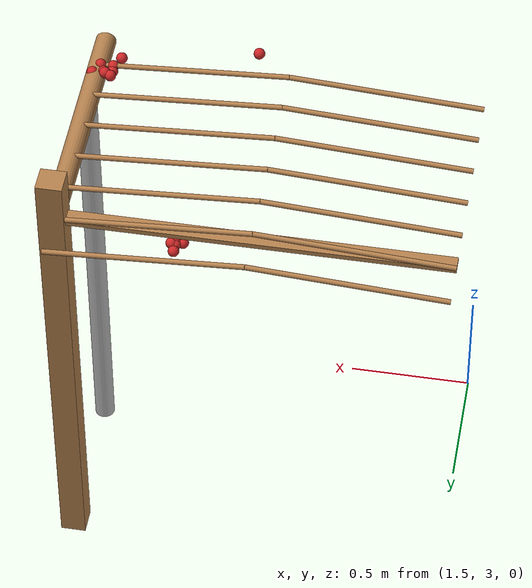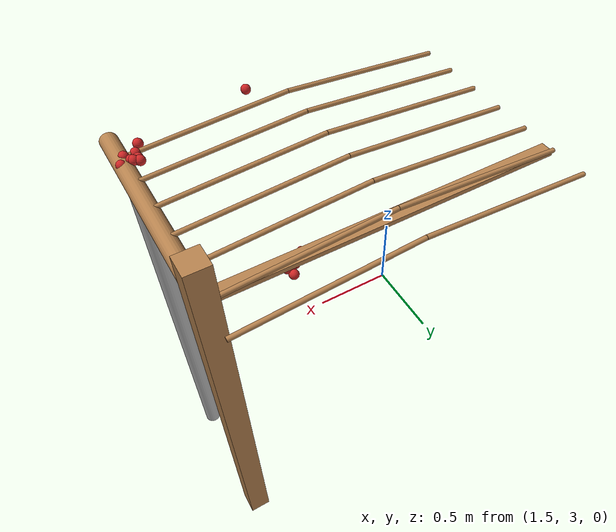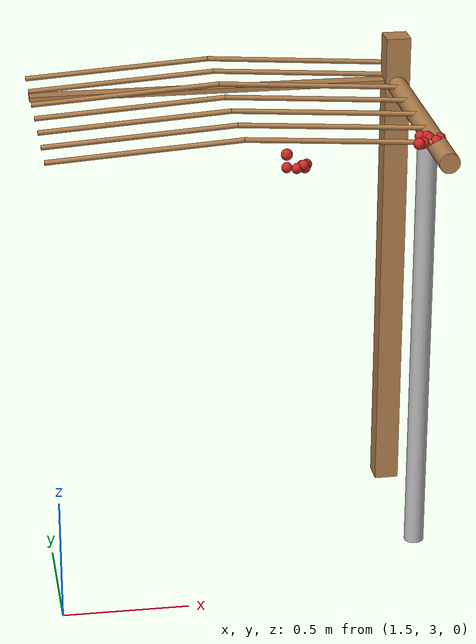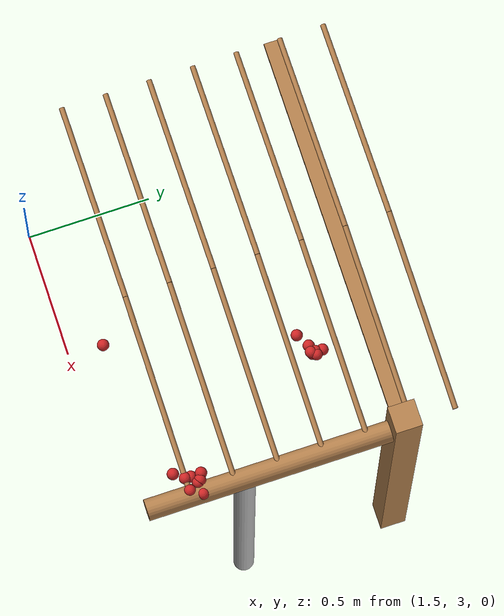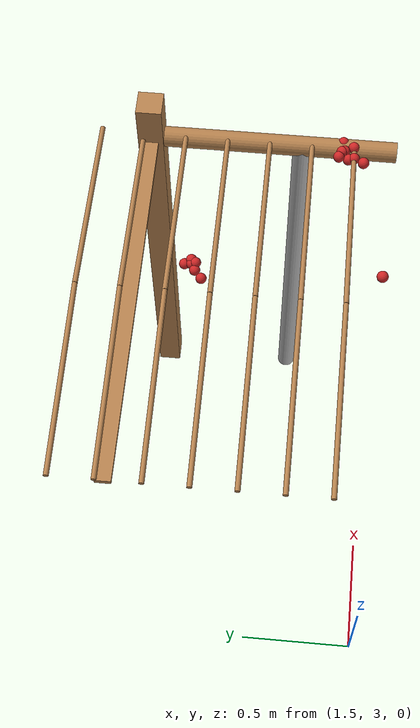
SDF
<sdf version="1.4">
 <model name="pergola">
  <include><name>post_26</name><pose>3.0 4.0 0 0 0 0</pose><uri>model://post</uri></include>
  <link name="beam_15">
   <pose>2.25 4.0 1.81 0 0 0</pose>
   <collision name="collision"><geometry><box><size>1.5 0.06 0.02</size></box></geometry></collision>
   <visual name="visual">
    <geometry><box><size>1.5 0.06 0.02</size></box></geometry>
    <material><script><name>Gazebo/Wood</name></script></material>
   </visual>
   <inertial>
    <mass>5</mass>
    <inertia>
     <ixx>0.0016666666666666668</ixx>
     <ixy>0.0</ixy>
     <ixz>0.0</ixz>
     <iyy>0.9390000000000001</iyy>
     <iyz>0.0</iyz>
     <izz>0.9376666666666665</izz>
    </inertia>
   </inertial>
  </link>
  <include><name>tree_23</name><pose>3.0 3.4 0 0 0 0</pose><uri>model://tree_trunk</uri></include>
  <link name="baseBranch_23">
   <pose>3.0 3.5 1.8 1.5707963267948966 0 0</pose>
   <collision name="collision">
    <geometry><cylinder><radius>0.04</radius><length>0.94</length></cylinder></geometry>
   </collision>
   <visual name="visual">
    <geometry><cylinder><radius>0.04</radius><length>0.94</length></cylinder></geometry>
    <material><script><name>Gazebo/WoodFloor</name></script></material>
   </visual>
   <inertial>
    <mass>10</mass>
    <inertia>
     <ixx>0.7403333333333334</ixx>
     <ixy>0.0</ixy>
     <ixz>0.0</ixz>
     <iyy>0.7403333333333334</iyy>
     <iyz>0.0</iyz>
     <izz>0.008</izz>
    </inertia>
   </inertial>
  </link>
  <link name="vine_158">
   <pose>1.875 3.1966666666666663 1.85 0 1.5042281630190728 0</pose>
   <collision name="collision">
    <geometry><cylinder><radius>0.01</radius><length>0.7516648189186453</length></cylinder></geometry>
   </collision>
   <visual name="visual">
    <geometry><cylinder><radius>0.01</radius><length>0.7516648189186453</length></cylinder></geometry>
    <material><script><name>Gazebo/WoodFloor</name></script></material>
   </visual>
   <inertial>
    <mass>5</mass>
    <inertia>
     <ixx>0.23554166666666657</ixx>
     <ixy>0.0</ixy>
     <ixz>0.0</ixz>
     <iyy>0.23554166666666657</iyy>
     <iyz>0.0</iyz>
     <izz>0.00025</izz>
    </inertia>
   </inertial>
  </link>
  <link name="vine_159">
   <pose>2.625 3.1966666666666663 1.85 0 -1.5042281630190728 0</pose>
   <collision name="collision">
    <geometry><cylinder><radius>0.01</radius><length>0.7516648189186453</length></cylinder></geometry>
   </collision>
   <visual name="visual">
    <geometry><cylinder><radius>0.01</radius><length>0.7516648189186453</length></cylinder></geometry>
    <material><script><name>Gazebo/WoodFloor</name></script></material>
   </visual>
   <inertial>
    <mass>5</mass>
    <inertia>
     <ixx>0.23554166666666657</ixx>
     <ixy>0.0</ixy>
     <ixz>0.0</ixz>
     <iyy>0.23554166666666657</iyy>
     <iyz>0.0</iyz>
     <izz>0.00025</izz>
    </inertia>
   </inertial>
  </link>
  <link name="vine_160">
   <pose>1.875 3.363333333333333 1.85 0 1.5042281630190728 0</pose>
   <collision name="collision">
    <geometry><cylinder><radius>0.01</radius><length>0.7516648189186453</length></cylinder></geometry>
   </collision>
   <visual name="visual">
    <geometry><cylinder><radius>0.01</radius><length>0.7516648189186453</length></cylinder></geometry>
    <material><script><name>Gazebo/WoodFloor</name></script></material>
   </visual>
   <inertial>
    <mass>5</mass>
    <inertia>
     <ixx>0.23554166666666657</ixx>
     <ixy>0.0</ixy>
     <ixz>0.0</ixz>
     <iyy>0.23554166666666657</iyy>
     <iyz>0.0</iyz>
     <izz>0.00025</izz>
    </inertia>
   </inertial>
  </link>
  <link name="vine_161">
   <pose>2.625 3.363333333333333 1.85 0 -1.5042281630190728 0</pose>
   <collision name="collision">
    <geometry><cylinder><radius>0.01</radius><length>0.7516648189186453</length></cylinder></geometry>
   </collision>
   <visual name="visual">
    <geometry><cylinder><radius>0.01</radius><length>0.7516648189186453</length></cylinder></geometry>
    <material><script><name>Gazebo/WoodFloor</name></script></material>
   </visual>
   <inertial>
    <mass>5</mass>
    <inertia>
     <ixx>0.23554166666666657</ixx>
     <ixy>0.0</ixy>
     <ixz>0.0</ixz>
     <iyy>0.23554166666666657</iyy>
     <iyz>0.0</iyz>
     <izz>0.00025</izz>
    </inertia>
   </inertial>
  </link>
  <link name="vine_162">
   <pose>1.875 3.53 1.85 0 1.5042281630190728 0</pose>
   <collision name="collision">
    <geometry><cylinder><radius>0.01</radius><length>0.7516648189186453</length></cylinder></geometry>
   </collision>
   <visual name="visual">
    <geometry><cylinder><radius>0.01</radius><length>0.7516648189186453</length></cylinder></geometry>
    <material><script><name>Gazebo/WoodFloor</name></script></material>
   </visual>
   <inertial>
    <mass>5</mass>
    <inertia>
     <ixx>0.23554166666666657</ixx>
     <ixy>0.0</ixy>
     <ixz>0.0</ixz>
     <iyy>0.23554166666666657</iyy>
     <iyz>0.0</iyz>
     <izz>0.00025</izz>
    </inertia>
   </inertial>
  </link>
  <link name="vine_163">
   <pose>2.625 3.53 1.85 0 -1.5042281630190728 0</pose>
   <collision name="collision">
    <geometry><cylinder><radius>0.01</radius><length>0.7516648189186453</length></cylinder></geometry>
   </collision>
   <visual name="visual">
    <geometry><cylinder><radius>0.01</radius><length>0.7516648189186453</length></cylinder></geometry>
    <material><script><name>Gazebo/WoodFloor</name></script></material>
   </visual>
   <inertial>
    <mass>5</mass>
    <inertia>
     <ixx>0.23554166666666657</ixx>
     <ixy>0.0</ixy>
     <ixz>0.0</ixz>
     <iyy>0.23554166666666657</iyy>
     <iyz>0.0</iyz>
     <izz>0.00025</izz>
    </inertia>
   </inertial>
  </link>
  <link name="vine_164">
   <pose>1.875 3.6966666666666663 1.85 0 1.5042281630190728 0</pose>
   <collision name="collision">
    <geometry><cylinder><radius>0.01</radius><length>0.7516648189186453</length></cylinder></geometry>
   </collision>
   <visual name="visual">
    <geometry><cylinder><radius>0.01</radius><length>0.7516648189186453</length></cylinder></geometry>
    <material><script><name>Gazebo/WoodFloor</name></script></material>
   </visual>
   <inertial>
    <mass>5</mass>
    <inertia>
     <ixx>0.23554166666666657</ixx>
     <ixy>0.0</ixy>
     <ixz>0.0</ixz>
     <iyy>0.23554166666666657</iyy>
     <iyz>0.0</iyz>
     <izz>0.00025</izz>
    </inertia>
   </inertial>
  </link>
  <link name="vine_165">
   <pose>2.625 3.6966666666666663 1.85 0 -1.5042281630190728 0</pose>
   <collision name="collision">
    <geometry><cylinder><radius>0.01</radius><length>0.7516648189186453</length></cylinder></geometry>
   </collision>
   <visual name="visual">
    <geometry><cylinder><radius>0.01</radius><length>0.7516648189186453</length></cylinder></geometry>
    <material><script><name>Gazebo/WoodFloor</name></script></material>
   </visual>
   <inertial>
    <mass>5</mass>
    <inertia>
     <ixx>0.23554166666666657</ixx>
     <ixy>0.0</ixy>
     <ixz>0.0</ixz>
     <iyy>0.23554166666666657</iyy>
     <iyz>0.0</iyz>
     <izz>0.00025</izz>
    </inertia>
   </inertial>
  </link>
  <link name="vine_166">
   <pose>1.875 3.863333333333333 1.85 0 1.5042281630190728 0</pose>
   <collision name="collision">
    <geometry><cylinder><radius>0.01</radius><length>0.7516648189186453</length></cylinder></geometry>
   </collision>
   <visual name="visual">
    <geometry><cylinder><radius>0.01</radius><length>0.7516648189186453</length></cylinder></geometry>
    <material><script><name>Gazebo/WoodFloor</name></script></material>
   </visual>
   <inertial>
    <mass>5</mass>
    <inertia>
     <ixx>0.23554166666666657</ixx>
     <ixy>0.0</ixy>
     <ixz>0.0</ixz>
     <iyy>0.23554166666666657</iyy>
     <iyz>0.0</iyz>
     <izz>0.00025</izz>
    </inertia>
   </inertial>
  </link>
  <link name="vine_167">
   <pose>2.625 3.863333333333333 1.85 0 -1.5042281630190728 0</pose>
   <collision name="collision">
    <geometry><cylinder><radius>0.01</radius><length>0.7516648189186453</length></cylinder></geometry>
   </collision>
   <visual name="visual">
    <geometry><cylinder><radius>0.01</radius><length>0.7516648189186453</length></cylinder></geometry>
    <material><script><name>Gazebo/WoodFloor</name></script></material>
   </visual>
   <inertial>
    <mass>5</mass>
    <inertia>
     <ixx>0.23554166666666657</ixx>
     <ixy>0.0</ixy>
     <ixz>0.0</ixz>
     <iyy>0.23554166666666657</iyy>
     <iyz>0.0</iyz>
     <izz>0.00025</izz>
    </inertia>
   </inertial>
  </link>
  <link name="vine_168">
   <pose>1.875 4.03 1.85 0 1.5042281630190728 0</pose>
   <collision name="collision">
    <geometry><cylinder><radius>0.01</radius><length>0.7516648189186453</length></cylinder></geometry>
   </collision>
   <visual name="visual">
    <geometry><cylinder><radius>0.01</radius><length>0.7516648189186453</length></cylinder></geometry>
    <material><script><name>Gazebo/WoodFloor</name></script></material>
   </visual>
   <inertial>
    <mass>5</mass>
    <inertia>
     <ixx>0.23554166666666657</ixx>
     <ixy>0.0</ixy>
     <ixz>0.0</ixz>
     <iyy>0.23554166666666657</iyy>
     <iyz>0.0</iyz>
     <izz>0.00025</izz>
    </inertia>
   </inertial>
  </link>
  <link name="vine_169">
   <pose>2.625 4.03 1.85 0 -1.5042281630190728 0</pose>
   <collision name="collision">
    <geometry><cylinder><radius>0.01</radius><length>0.7516648189186453</length></cylinder></geometry>
   </collision>
   <visual name="visual">
    <geometry><cylinder><radius>0.01</radius><length>0.7516648189186453</length></cylinder></geometry>
    <material><script><name>Gazebo/WoodFloor</name></script></material>
   </visual>
   <inertial>
    <mass>5</mass>
    <inertia>
     <ixx>0.23554166666666657</ixx>
     <ixy>0.0</ixy>
     <ixz>0.0</ixz>
     <iyy>0.23554166666666657</iyy>
     <iyz>0.0</iyz>
     <izz>0.00025</izz>
    </inertia>
   </inertial>
  </link>
  <link name="vine_170">
   <pose>1.875 4.196666666666666 1.85 0 1.5042281630190728 0</pose>
   <collision name="collision">
    <geometry><cylinder><radius>0.01</radius><length>0.7516648189186453</length></cylinder></geometry>
   </collision>
   <visual name="visual">
    <geometry><cylinder><radius>0.01</radius><length>0.7516648189186453</length></cylinder></geometry>
    <material><script><name>Gazebo/WoodFloor</name></script></material>
   </visual>
   <inertial>
    <mass>5</mass>
    <inertia>
     <ixx>0.23554166666666657</ixx>
     <ixy>0.0</ixy>
     <ixz>0.0</ixz>
     <iyy>0.23554166666666657</iyy>
     <iyz>0.0</iyz>
     <izz>0.00025</izz>
    </inertia>
   </inertial>
  </link>
  <link name="vine_171">
   <pose>2.625 4.196666666666666 1.85 0 -1.5042281630190728 0</pose>
   <collision name="collision">
    <geometry><cylinder><radius>0.01</radius><length>0.7516648189186453</length></cylinder></geometry>
   </collision>
   <visual name="visual">
    <geometry><cylinder><radius>0.01</radius><length>0.7516648189186453</length></cylinder></geometry>
    <material><script><name>Gazebo/WoodFloor</name></script></material>
   </visual>
   <inertial>
    <mass>5</mass>
    <inertia>
     <ixx>0.23554166666666657</ixx>
     <ixy>0.0</ixy>
     <ixz>0.0</ixz>
     <iyy>0.23554166666666657</iyy>
     <iyz>0.0</iyz>
     <izz>0.00025</izz>
    </inertia>
   </inertial>
  </link>
  <link name="fruit_37">
   <pose>2.9109457728669335 3.1590558161713305 1.8371697551402528 0 0 0</pose>
   <collision name="fruit_collision_37"><geometry><sphere><radius>0.022</radius></sphere></geometry></collision>
   <visual name="visual">
    <geometry><sphere><radius>0.022</radius></sphere></geometry>
    <material><script><name>Gazebo/Red</name></script></material>
   </visual>
   <inertial>
    <mass>0.05</mass>
    <inertia>
     <ixx>9.679999999999999e-06</ixx>
     <ixy>0.0</ixy>
     <ixz>0.0</ixz>
     <iyy>9.679999999999999e-06</iyy>
     <iyz>0.0</iyz>
     <izz>9.679999999999999e-06</izz>
    </inertia>
   </inertial>
   <sensor name="fruit_contact_37" type="contact">
    <contact><collision>fruit_collision_37</collision></contact>
   </sensor>
  </link>
  <link name="fruit_44">
   <pose>2.511497024082399 3.762694443805269 1.542688298887936 0 0 0</pose>
   <collision name="fruit_collision_44"><geometry><sphere><radius>0.022</radius></sphere></geometry></collision>
   <visual name="visual">
    <geometry><sphere><radius>0.022</radius></sphere></geometry>
    <material><script><name>Gazebo/Red</name></script></material>
   </visual>
   <inertial>
    <mass>0.05</mass>
    <inertia>
     <ixx>9.679999999999999e-06</ixx>
     <ixy>0.0</ixy>
     <ixz>0.0</ixz>
     <iyy>9.679999999999999e-06</iyy>
     <iyz>0.0</iyz>
     <izz>9.679999999999999e-06</izz>
    </inertia>
   </inertial>
   <sensor name="fruit_contact_44" type="contact">
    <contact><collision>fruit_collision_44</collision></contact>
   </sensor>
  </link>
  <link name="fruit_126">
   <pose>3.010456251318484 3.241071546691191 1.8256956375587208 0 0 0</pose>
   <collision name="fruit_collision_126"><geometry><sphere><radius>0.022</radius></sphere></geometry></collision>
   <visual name="visual">
    <geometry><sphere><radius>0.022</radius></sphere></geometry>
    <material><script><name>Gazebo/Red</name></script></material>
   </visual>
   <inertial>
    <mass>0.05</mass>
    <inertia>
     <ixx>9.679999999999999e-06</ixx>
     <ixy>0.0</ixy>
     <ixz>0.0</ixz>
     <iyy>9.679999999999999e-06</iyy>
     <iyz>0.0</iyz>
     <izz>9.679999999999999e-06</izz>
    </inertia>
   </inertial>
   <sensor name="fruit_contact_126" type="contact">
    <contact><collision>fruit_collision_126</collision></contact>
   </sensor>
  </link>
  <link name="fruit_177">
   <pose>2.936876246147595 3.2177364372763333 1.817776059694755 0 0 0</pose>
   <collision name="fruit_collision_177"><geometry><sphere><radius>0.022</radius></sphere></geometry></collision>
   <visual name="visual">
    <geometry><sphere><radius>0.022</radius></sphere></geometry>
    <material><script><name>Gazebo/Red</name></script></material>
   </visual>
   <inertial>
    <mass>0.05</mass>
    <inertia>
     <ixx>9.679999999999999e-06</ixx>
     <ixy>0.0</ixy>
     <ixz>0.0</ixz>
     <iyy>9.679999999999999e-06</iyy>
     <iyz>0.0</iyz>
     <izz>9.679999999999999e-06</izz>
    </inertia>
   </inertial>
   <sensor name="fruit_contact_177" type="contact">
    <contact><collision>fruit_collision_177</collision></contact>
   </sensor>
  </link>
  <link name="fruit_184">
   <pose>2.9370754001491552 3.256114536415931 1.8316749555511307 0 0 0</pose>
   <collision name="fruit_collision_184"><geometry><sphere><radius>0.022</radius></sphere></geometry></collision>
   <visual name="visual">
    <geometry><sphere><radius>0.022</radius></sphere></geometry>
    <material><script><name>Gazebo/Red</name></script></material>
   </visual>
   <inertial>
    <mass>0.05</mass>
    <inertia>
     <ixx>9.679999999999999e-06</ixx>
     <ixy>0.0</ixy>
     <ixz>0.0</ixz>
     <iyy>9.679999999999999e-06</iyy>
     <iyz>0.0</iyz>
     <izz>9.679999999999999e-06</izz>
    </inertia>
   </inertial>
   <sensor name="fruit_contact_184" type="contact">
    <contact><collision>fruit_collision_184</collision></contact>
   </sensor>
  </link>
  <link name="fruit_227">
   <pose>2.985961894898693 3.1993903885776285 1.8305454168051971 0 0 0</pose>
   <collision name="fruit_collision_227"><geometry><sphere><radius>0.022</radius></sphere></geometry></collision>
   <visual name="visual">
    <geometry><sphere><radius>0.022</radius></sphere></geometry>
    <material><script><name>Gazebo/Red</name></script></material>
   </visual>
   <inertial>
    <mass>0.05</mass>
    <inertia>
     <ixx>9.679999999999999e-06</ixx>
     <ixy>0.0</ixy>
     <ixz>0.0</ixz>
     <iyy>9.679999999999999e-06</iyy>
     <iyz>0.0</iyz>
     <izz>9.679999999999999e-06</izz>
    </inertia>
   </inertial>
   <sensor name="fruit_contact_227" type="contact">
    <contact><collision>fruit_collision_227</collision></contact>
   </sensor>
  </link>
  <link name="fruit_256">
   <pose>2.966433930921241 3.2359355566249675 1.8307605212310383 0 0 0</pose>
   <collision name="fruit_collision_256"><geometry><sphere><radius>0.022</radius></sphere></geometry></collision>
   <visual name="visual">
    <geometry><sphere><radius>0.022</radius></sphere></geometry>
    <material><script><name>Gazebo/Red</name></script></material>
   </visual>
   <inertial>
    <mass>0.05</mass>
    <inertia>
     <ixx>9.679999999999999e-06</ixx>
     <ixy>0.0</ixy>
     <ixz>0.0</ixz>
     <iyy>9.679999999999999e-06</iyy>
     <iyz>0.0</iyz>
     <izz>9.679999999999999e-06</izz>
    </inertia>
   </inertial>
   <sensor name="fruit_contact_256" type="contact">
    <contact><collision>fruit_collision_256</collision></contact>
   </sensor>
  </link>
  <link name="fruit_257">
   <pose>2.388385141502623 3.0668529774321427 1.8564349878119193 0 0 0</pose>
   <collision name="fruit_collision_257"><geometry><sphere><radius>0.022</radius></sphere></geometry></collision>
   <visual name="visual">
    <geometry><sphere><radius>0.022</radius></sphere></geometry>
    <material><script><name>Gazebo/Red</name></script></material>
   </visual>
   <inertial>
    <mass>0.05</mass>
    <inertia>
     <ixx>9.679999999999999e-06</ixx>
     <ixy>0.0</ixy>
     <ixz>0.0</ixz>
     <iyy>9.679999999999999e-06</iyy>
     <iyz>0.0</iyz>
     <izz>9.679999999999999e-06</izz>
    </inertia>
   </inertial>
   <sensor name="fruit_contact_257" type="contact">
    <contact><collision>fruit_collision_257</collision></contact>
   </sensor>
  </link>
  <link name="fruit_283">
   <pose>2.585221659237939 3.809019529634216 1.5286860442502281 0 0 0</pose>
   <collision name="fruit_collision_283"><geometry><sphere><radius>0.022</radius></sphere></geometry></collision>
   <visual name="visual">
    <geometry><sphere><radius>0.022</radius></sphere></geometry>
    <material><script><name>Gazebo/Red</name></script></material>
   </visual>
   <inertial>
    <mass>0.05</mass>
    <inertia>
     <ixx>9.679999999999999e-06</ixx>
     <ixy>0.0</ixy>
     <ixz>0.0</ixz>
     <iyy>9.679999999999999e-06</iyy>
     <iyz>0.0</iyz>
     <izz>9.679999999999999e-06</izz>
    </inertia>
   </inertial>
   <sensor name="fruit_contact_283" type="contact">
    <contact><collision>fruit_collision_283</collision></contact>
   </sensor>
  </link>
  <link name="fruit_305">
   <pose>2.5582891199628297 3.7932625256534847 1.5249067541239238 0 0 0</pose>
   <collision name="fruit_collision_305"><geometry><sphere><radius>0.022</radius></sphere></geometry></collision>
   <visual name="visual">
    <geometry><sphere><radius>0.022</radius></sphere></geometry>
    <material><script><name>Gazebo/Red</name></script></material>
   </visual>
   <inertial>
    <mass>0.05</mass>
    <inertia>
     <ixx>9.679999999999999e-06</ixx>
     <ixy>0.0</ixy>
     <ixz>0.0</ixz>
     <iyy>9.679999999999999e-06</iyy>
     <iyz>0.0</iyz>
     <izz>9.679999999999999e-06</izz>
    </inertia>
   </inertial>
   <sensor name="fruit_contact_305" type="contact">
    <contact><collision>fruit_collision_305</collision></contact>
   </sensor>
  </link>
  <link name="fruit_380">
   <pose>2.960453846310268 3.2448146707547325 1.8339600497294941 0 0 0</pose>
   <collision name="fruit_collision_380"><geometry><sphere><radius>0.022</radius></sphere></geometry></collision>
   <visual name="visual">
    <geometry><sphere><radius>0.022</radius></sphere></geometry>
    <material><script><name>Gazebo/Red</name></script></material>
   </visual>
   <inertial>
    <mass>0.05</mass>
    <inertia>
     <ixx>9.679999999999999e-06</ixx>
     <ixy>0.0</ixy>
     <ixz>0.0</ixz>
     <iyy>9.679999999999999e-06</iyy>
     <iyz>0.0</iyz>
     <izz>9.679999999999999e-06</izz>
    </inertia>
   </inertial>
   <sensor name="fruit_contact_380" type="contact">
    <contact><collision>fruit_collision_380</collision></contact>
   </sensor>
  </link>
  <link name="fruit_411">
   <pose>2.9368451234136077 3.19607115711076 1.8261353412396466 0 0 0</pose>
   <collision name="fruit_collision_411"><geometry><sphere><radius>0.022</radius></sphere></geometry></collision>
   <visual name="visual">
    <geometry><sphere><radius>0.022</radius></sphere></geometry>
    <material><script><name>Gazebo/Red</name></script></material>
   </visual>
   <inertial>
    <mass>0.05</mass>
    <inertia>
     <ixx>9.679999999999999e-06</ixx>
     <ixy>0.0</ixy>
     <ixz>0.0</ixz>
     <iyy>9.679999999999999e-06</iyy>
     <iyz>0.0</iyz>
     <izz>9.679999999999999e-06</izz>
    </inertia>
   </inertial>
   <sensor name="fruit_contact_411" type="contact">
    <contact><collision>fruit_collision_411</collision></contact>
   </sensor>
  </link>
  <link name="fruit_436">
   <pose>2.5872574455037047 3.837118243014145 1.5206943770929569 0 0 0</pose>
   <collision name="fruit_collision_436"><geometry><sphere><radius>0.022</radius></sphere></geometry></collision>
   <visual name="visual">
    <geometry><sphere><radius>0.022</radius></sphere></geometry>
    <material><script><name>Gazebo/Red</name></script></material>
   </visual>
   <inertial>
    <mass>0.05</mass>
    <inertia>
     <ixx>9.679999999999999e-06</ixx>
     <ixy>0.0</ixy>
     <ixz>0.0</ixz>
     <iyy>9.679999999999999e-06</iyy>
     <iyz>0.0</iyz>
     <izz>9.679999999999999e-06</izz>
    </inertia>
   </inertial>
   <sensor name="fruit_contact_436" type="contact">
    <contact><collision>fruit_collision_436</collision></contact>
   </sensor>
  </link>
  <link name="fruit_444">
   <pose>2.5859774577128025 3.792295843353271 1.5374192306099532 0 0 0</pose>
   <collision name="fruit_collision_444"><geometry><sphere><radius>0.022</radius></sphere></geometry></collision>
   <visual name="visual">
    <geometry><sphere><radius>0.022</radius></sphere></geometry>
    <material><script><name>Gazebo/Red</name></script></material>
   </visual>
   <inertial>
    <mass>0.05</mass>
    <inertia>
     <ixx>9.679999999999999e-06</ixx>
     <ixy>0.0</ixy>
     <ixz>0.0</ixz>
     <iyy>9.679999999999999e-06</iyy>
     <iyz>0.0</iyz>
     <izz>9.679999999999999e-06</izz>
    </inertia>
   </inertial>
   <sensor name="fruit_contact_444" type="contact">
    <contact><collision>fruit_collision_444</collision></contact>
   </sensor>
  </link>
  <link name="fruit_453">
   <pose>2.6004171916639818 3.8100178518725762 1.5347154463311592 0 0 0</pose>
   <collision name="fruit_collision_453"><geometry><sphere><radius>0.022</radius></sphere></geometry></collision>
   <visual name="visual">
    <geometry><sphere><radius>0.022</radius></sphere></geometry>
    <material><script><name>Gazebo/Red</name></script></material>
   </visual>
   <inertial>
    <mass>0.05</mass>
    <inertia>
     <ixx>9.679999999999999e-06</ixx>
     <ixy>0.0</ixy>
     <ixz>0.0</ixz>
     <iyy>9.679999999999999e-06</iyy>
     <iyz>0.0</iyz>
     <izz>9.679999999999999e-06</izz>
    </inertia>
   </inertial>
   <sensor name="fruit_contact_453" type="contact">
    <contact><collision>fruit_collision_453</collision></contact>
   </sensor>
  </link>
  <link name="fruit_489">
   <pose>2.592038357467603 3.7976117896987174 1.5244593437278937 0 0 0</pose>
   <collision name="fruit_collision_489"><geometry><sphere><radius>0.022</radius></sphere></geometry></collision>
   <visual name="visual">
    <geometry><sphere><radius>0.022</radius></sphere></geometry>
    <material><script><name>Gazebo/Red</name></script></material>
   </visual>
   <inertial>
    <mass>0.05</mass>
    <inertia>
     <ixx>9.679999999999999e-06</ixx>
     <ixy>0.0</ixy>
     <ixz>0.0</ixz>
     <iyy>9.679999999999999e-06</iyy>
     <iyz>0.0</iyz>
     <izz>9.679999999999999e-06</izz>
    </inertia>
   </inertial>
   <sensor name="fruit_contact_489" type="contact">
    <contact><collision>fruit_collision_489</collision></contact>
   </sensor>
  </link>
 </model>
</sdf>
